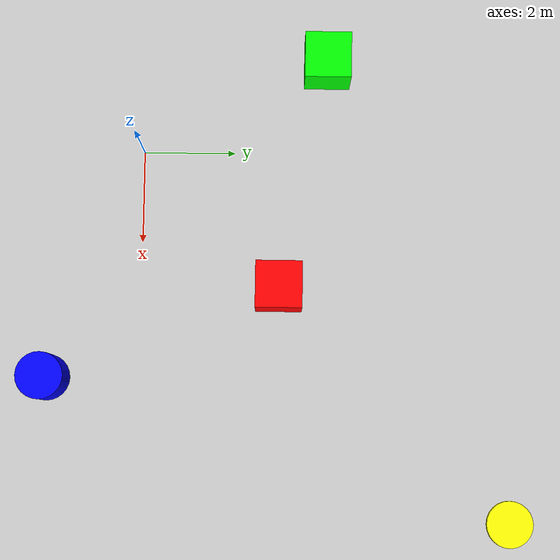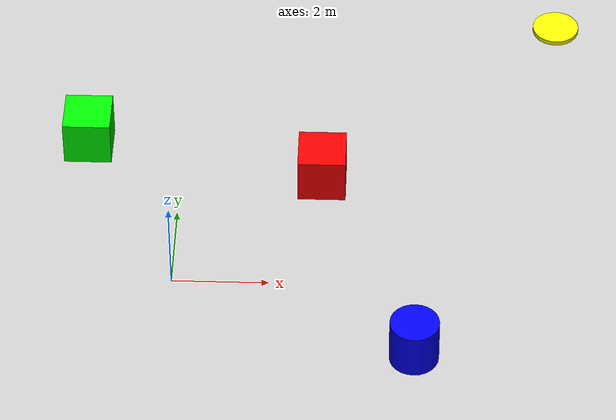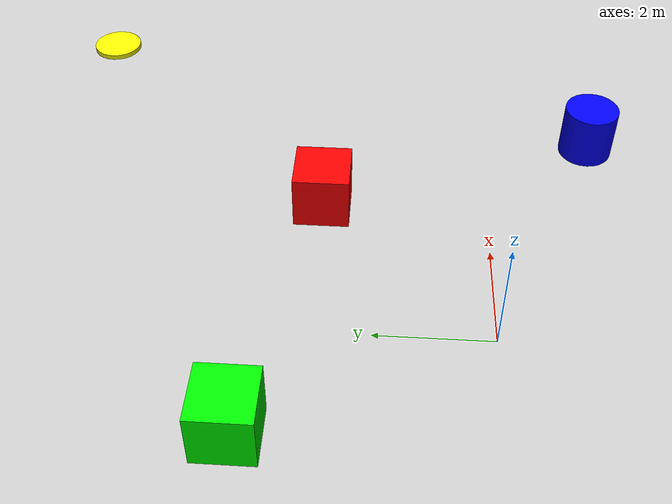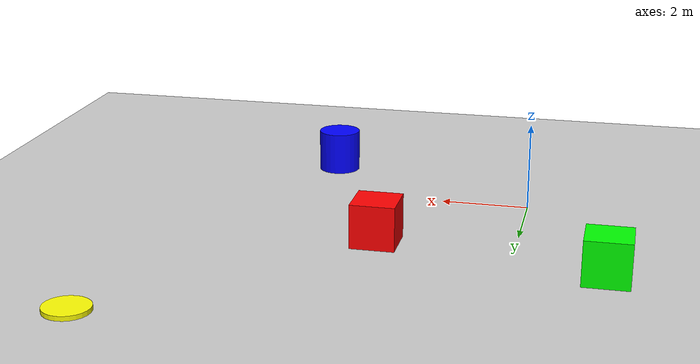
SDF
<?xml version="1.0"?>
<sdf version="1.6">
  <world name="pioneer3at_world">
    <include>
      <uri>model://ground_plane</uri>
    </include>

    <include>
      <uri>model://sun</uri>
    </include>

    <!-- Obstacles -->
    <model name="box1">
      <pose>3 3 0.5 0 0 0</pose>
      <link name="link">
        <collision name="collision">
          <geometry>
            <box>
              <size>1 1 1</size>
            </box>
          </geometry>
        </collision>
        <visual name="visual">
          <geometry>
            <box>
              <size>1 1 1</size>
            </box>
          </geometry>
          <material>
            <ambient>1 0 0 1</ambient>
            <diffuse>1 0 0 1</diffuse>
            <specular>0 0 0 1</specular>
          </material>
        </visual>
      </link>
    </model>

    <model name="box2">
      <pose>-2 4 0.5 0 0 0</pose>
      <link name="link">
        <collision name="collision">
          <geometry>
            <box>
              <size>1 1 1</size>
            </box>
          </geometry>
        </collision>
        <visual name="visual">
          <geometry>
            <box>
              <size>1 1 1</size>
            </box>
          </geometry>
          <material>
            <ambient>0 1 0 1</ambient>
            <diffuse>0 1 0 1</diffuse>
            <specular>0 0 0 1</specular>
          </material>
        </visual>
      </link>
    </model>

    <model name="cylinder1">
      <pose>5 -2 0.5 0 0 0</pose>
      <link name="link">
        <collision name="collision">
          <geometry>
            <cylinder>
              <radius>0.5</radius>
              <length>1</length>
            </cylinder>
          </geometry>
        </collision>
        <visual name="visual">
          <geometry>
            <cylinder>
              <radius>0.5</radius>
              <length>1</length>
            </cylinder>
          </geometry>
          <material>
            <ambient>0 0 1 1</ambient>
            <diffuse>0 0 1 1</diffuse>
            <specular>0 0 0 1</specular>
          </material>
        </visual>
      </link>
    </model>

    <!-- Goal marker -->
    <model name="goal_marker">
      <pose>8 8 0.1 0 0 0</pose>
      <link name="link">
        <visual name="visual">
          <geometry>
            <cylinder>
              <radius>0.5</radius>
              <length>0.1</length>
            </cylinder>
          </geometry>
          <material>
            <ambient>1 1 0 1</ambient>
            <diffuse>1 1 0 1</diffuse>
            <specular>0 0 0 1</specular>
          </material>
        </visual>
      </link>
    </model>

    <!-- Physics settings -->
    <physics name="default_physics" default="0" type="ode">
      <gravity>0 0 -9.8066</gravity>
      <ode>
        <solver>
          <type>quick</type>
          <iters>150</iters>
          <sor>1.3</sor>
          <use_dynamic_moi_rescaling>0</use_dynamic_moi_rescaling>
        </solver>
        <constraints>
          <cfm>0.00001</cfm>
          <erp>0.2</erp>
          <contact_max_correcting_vel>1000</contact_max_correcting_vel>
          <contact_surface_layer>0.01</contact_surface_layer>
        </constraints>
      </ode>
      <max_step_size>0.004</max_step_size>
      <real_time_factor>1.0</real_time_factor>
      <real_time_update_rate>250</real_time_update_rate>
    </physics>

    <!-- Scene settings -->
    <scene>
      <ambient>0.4 0.4 0.4 1</ambient>
      <background>0.7 0.7 0.7 1</background>
      <shadows>true</shadows>
    </scene>

    <!-- GUI settings -->
    <gui fullscreen='0'>
      <camera name='user_camera'>
        <pose frame=''>0.319654 -0.235002 9.29441 0 1.5138 0.009599</pose>
        <view_controller>orbit</view_controller>
        <projection_type>perspective</projection_type>
      </camera>
    </gui>
  </world>
</sdf>
